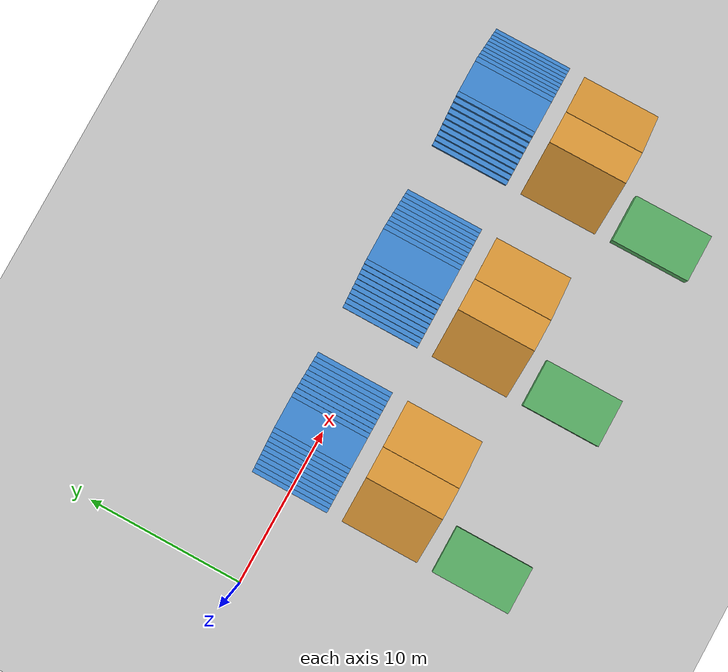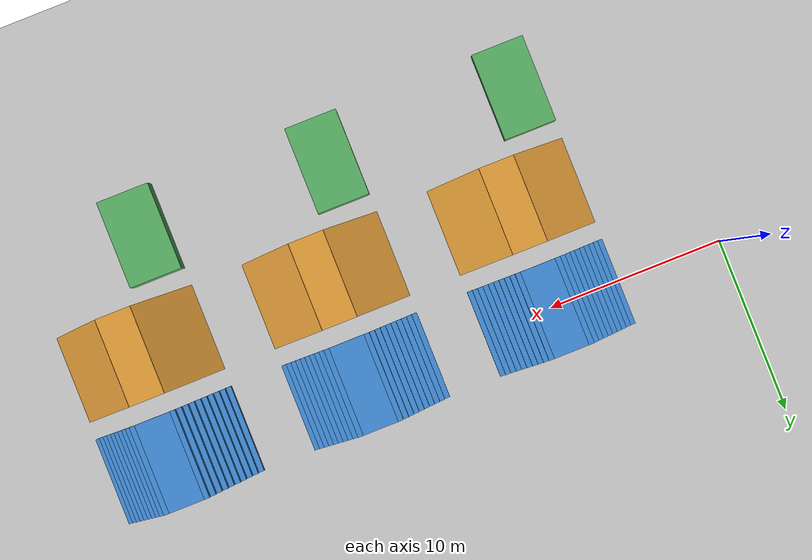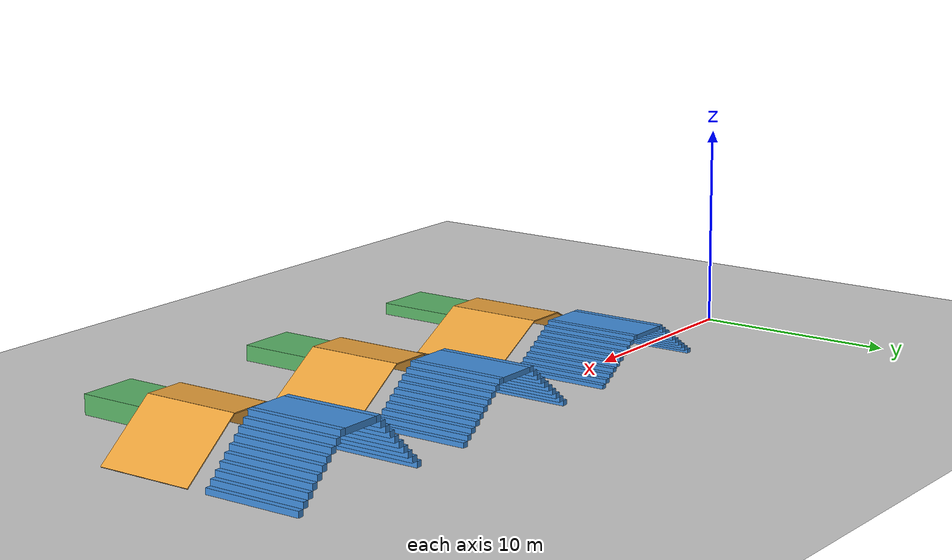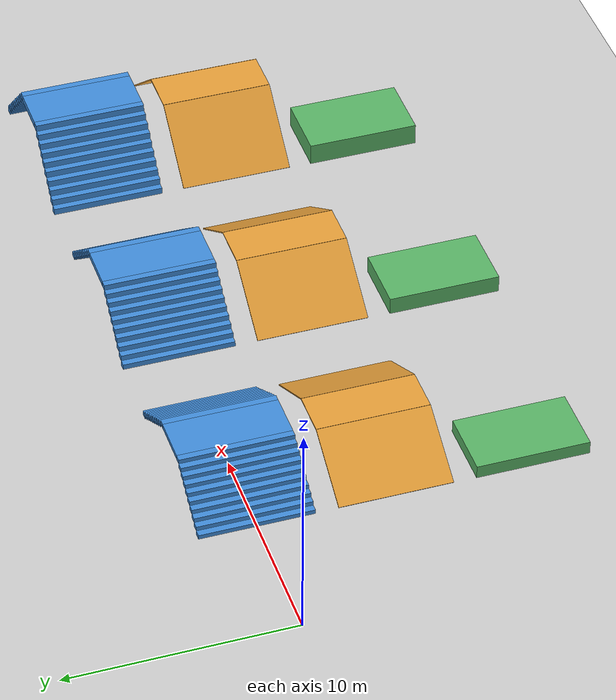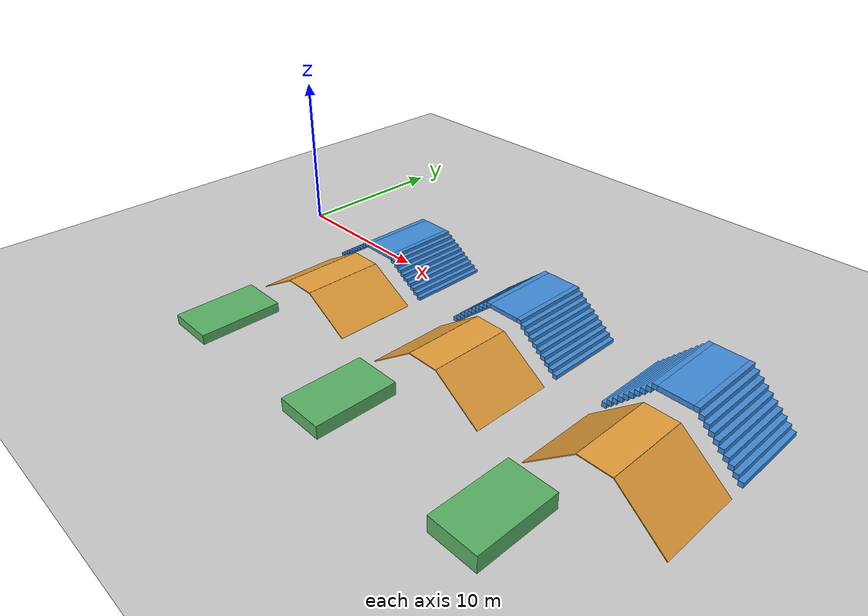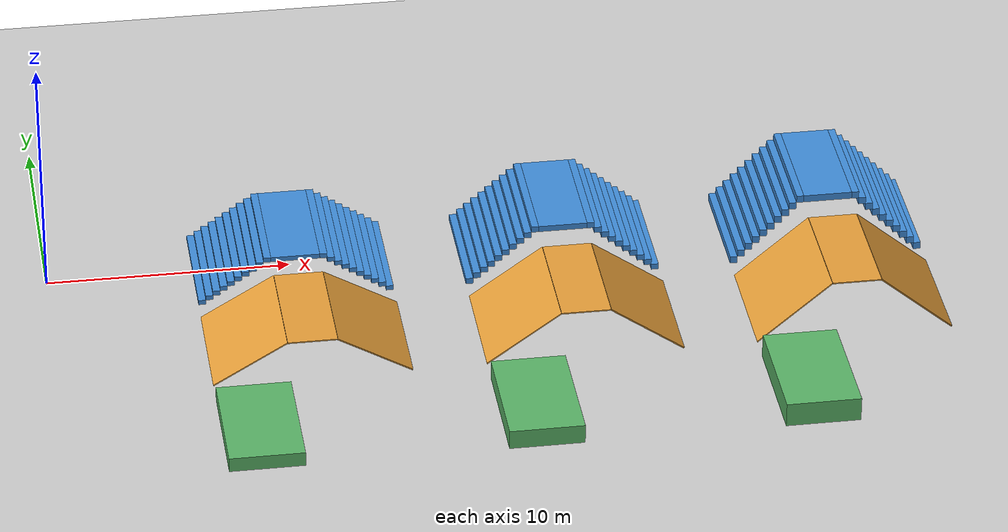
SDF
<?xml version='1.0' encoding='utf-8'?>
<sdf version="1.7">
  <world name="demo">
    <gui fullscreen="0">
      <camera name="user_camera">
        <pose>-20 -8 10 0 0.35 0.0</pose>
        <view_controller>orbit</view_controller>
        <projection_type>perspective</projection_type>
      </camera>
    </gui>
    <physics type="ode">
      <max_step_size>0.001</max_step_size>
      <real_time_factor>1.0</real_time_factor>
      <real_time_update_rate>1000</real_time_update_rate>
      <gravity>0 0 -9.81</gravity>
      <ode>
        <solver>
          <type>quick</type>
          <iters>50</iters>
          <sor>1.3</sor>
        </solver>
        <constraints>
          <cfm>0.0</cfm>
          <erp>0.2</erp>
          <contact_max_correcting_vel>10.0</contact_max_correcting_vel>
          <contact_surface_layer>0.001</contact_surface_layer>
        </constraints>
      </ode>
    </physics>
    <scene>
      <sky>
        <clouds>
          <speed>12</speed>
        </clouds>
      </sky>
    </scene>
    <include>
      <uri>model://sun</uri>
    </include>
    <include>
      <uri>model://ground_plane</uri>
    </include>
    <model name="all_terrains">
      <static>true</static>
      <link name="stairs_h20_d30__up_0">
        <pose>0 6.15 0.1 0 0 1.57079633</pose>
        <collision name="stairs_h20_d30__up_0_collision">
          <geometry>
            <box>
              <size>0.3 5.0 0.2</size>
            </box>
          </geometry>
          <surface>
            <friction>
              <ode>
                <mu>0.99</mu>
                <mu2>0.99</mu2>
              </ode>
            </friction>
          </surface>
        </collision>
        <visual name="stairs_h20_d30__up_0_visual">
          <geometry>
            <box>
              <size>0.3 5.0 0.2</size>
            </box>
          </geometry>
          <material>
            <ambient>0.25 0.55 0.85 1</ambient>
            <diffuse>0.25 0.55 0.85 1</diffuse>
          </material>
        </visual>
      </link>
      <link name="stairs_h20_d30__up_1">
        <pose>0 6.45 0.3 0 0 1.57079633</pose>
        <collision name="stairs_h20_d30__up_1_collision">
          <geometry>
            <box>
              <size>0.3 5.0 0.2</size>
            </box>
          </geometry>
          <surface>
            <friction>
              <ode>
                <mu>0.99</mu>
                <mu2>0.99</mu2>
              </ode>
            </friction>
          </surface>
        </collision>
        <visual name="stairs_h20_d30__up_1_visual">
          <geometry>
            <box>
              <size>0.3 5.0 0.2</size>
            </box>
          </geometry>
          <material>
            <ambient>0.25 0.55 0.85 1</ambient>
            <diffuse>0.25 0.55 0.85 1</diffuse>
          </material>
        </visual>
      </link>
      <link name="stairs_h20_d30__up_2">
        <pose>0 6.75 0.5 0 0 1.57079633</pose>
        <collision name="stairs_h20_d30__up_2_collision">
          <geometry>
            <box>
              <size>0.3 5.0 0.2</size>
            </box>
          </geometry>
          <surface>
            <friction>
              <ode>
                <mu>0.99</mu>
                <mu2>0.99</mu2>
              </ode>
            </friction>
          </surface>
        </collision>
        <visual name="stairs_h20_d30__up_2_visual">
          <geometry>
            <box>
              <size>0.3 5.0 0.2</size>
            </box>
          </geometry>
          <material>
            <ambient>0.25 0.55 0.85 1</ambient>
            <diffuse>0.25 0.55 0.85 1</diffuse>
          </material>
        </visual>
      </link>
      <link name="stairs_h20_d30__up_3">
        <pose>0 7.05 0.7 0 0 1.57079633</pose>
        <collision name="stairs_h20_d30__up_3_collision">
          <geometry>
            <box>
              <size>0.3 5.0 0.2</size>
            </box>
          </geometry>
          <surface>
            <friction>
              <ode>
                <mu>0.99</mu>
                <mu2>0.99</mu2>
              </ode>
            </friction>
          </surface>
        </collision>
        <visual name="stairs_h20_d30__up_3_visual">
          <geometry>
            <box>
              <size>0.3 5.0 0.2</size>
            </box>
          </geometry>
          <material>
            <ambient>0.25 0.55 0.85 1</ambient>
            <diffuse>0.25 0.55 0.85 1</diffuse>
          </material>
        </visual>
      </link>
      <link name="stairs_h20_d30__up_4">
        <pose>0 7.35 0.9 0 0 1.57079633</pose>
        <collision name="stairs_h20_d30__up_4_collision">
          <geometry>
            <box>
              <size>0.3 5.0 0.2</size>
            </box>
          </geometry>
          <surface>
            <friction>
              <ode>
                <mu>0.99</mu>
                <mu2>0.99</mu2>
              </ode>
            </friction>
          </surface>
        </collision>
        <visual name="stairs_h20_d30__up_4_visual">
          <geometry>
            <box>
              <size>0.3 5.0 0.2</size>
            </box>
          </geometry>
          <material>
            <ambient>0.25 0.55 0.85 1</ambient>
            <diffuse>0.25 0.55 0.85 1</diffuse>
          </material>
        </visual>
      </link>
      <link name="stairs_h20_d30__up_5">
        <pose>0 7.65 1.1 0 0 1.57079633</pose>
        <collision name="stairs_h20_d30__up_5_collision">
          <geometry>
            <box>
              <size>0.3 5.0 0.2</size>
            </box>
          </geometry>
          <surface>
            <friction>
              <ode>
                <mu>0.99</mu>
                <mu2>0.99</mu2>
              </ode>
            </friction>
          </surface>
        </collision>
        <visual name="stairs_h20_d30__up_5_visual">
          <geometry>
            <box>
              <size>0.3 5.0 0.2</size>
            </box>
          </geometry>
          <material>
            <ambient>0.25 0.55 0.85 1</ambient>
            <diffuse>0.25 0.55 0.85 1</diffuse>
          </material>
        </visual>
      </link>
      <link name="stairs_h20_d30__up_6">
        <pose>0 7.95 1.3 0 0 1.57079633</pose>
        <collision name="stairs_h20_d30__up_6_collision">
          <geometry>
            <box>
              <size>0.3 5.0 0.2</size>
            </box>
          </geometry>
          <surface>
            <friction>
              <ode>
                <mu>0.99</mu>
                <mu2>0.99</mu2>
              </ode>
            </friction>
          </surface>
        </collision>
        <visual name="stairs_h20_d30__up_6_visual">
          <geometry>
            <box>
              <size>0.3 5.0 0.2</size>
            </box>
          </geometry>
          <material>
            <ambient>0.25 0.55 0.85 1</ambient>
            <diffuse>0.25 0.55 0.85 1</diffuse>
          </material>
        </visual>
      </link>
      <link name="stairs_h20_d30__up_7">
        <pose>0 8.25 1.5 0 0 1.57079633</pose>
        <collision name="stairs_h20_d30__up_7_collision">
          <geometry>
            <box>
              <size>0.3 5.0 0.2</size>
            </box>
          </geometry>
          <surface>
            <friction>
              <ode>
                <mu>0.99</mu>
                <mu2>0.99</mu2>
              </ode>
            </friction>
          </surface>
        </collision>
        <visual name="stairs_h20_d30__up_7_visual">
          <geometry>
            <box>
              <size>0.3 5.0 0.2</size>
            </box>
          </geometry>
          <material>
            <ambient>0.25 0.55 0.85 1</ambient>
            <diffuse>0.25 0.55 0.85 1</diffuse>
          </material>
        </visual>
      </link>
      <link name="stairs_h20_d30__up_8">
        <pose>0 8.55 1.7 0 0 1.57079633</pose>
        <collision name="stairs_h20_d30__up_8_collision">
          <geometry>
            <box>
              <size>0.3 5.0 0.2</size>
            </box>
          </geometry>
          <surface>
            <friction>
              <ode>
                <mu>0.99</mu>
                <mu2>0.99</mu2>
              </ode>
            </friction>
          </surface>
        </collision>
        <visual name="stairs_h20_d30__up_8_visual">
          <geometry>
            <box>
              <size>0.3 5.0 0.2</size>
            </box>
          </geometry>
          <material>
            <ambient>0.25 0.55 0.85 1</ambient>
            <diffuse>0.25 0.55 0.85 1</diffuse>
          </material>
        </visual>
      </link>
      <link name="stairs_h20_d30__up_9">
        <pose>0 8.85 1.9 0 0 1.57079633</pose>
        <collision name="stairs_h20_d30__up_9_collision">
          <geometry>
            <box>
              <size>0.3 5.0 0.2</size>
            </box>
          </geometry>
          <surface>
            <friction>
              <ode>
                <mu>0.99</mu>
                <mu2>0.99</mu2>
              </ode>
            </friction>
          </surface>
        </collision>
        <visual name="stairs_h20_d30__up_9_visual">
          <geometry>
            <box>
              <size>0.3 5.0 0.2</size>
            </box>
          </geometry>
          <material>
            <ambient>0.25 0.55 0.85 1</ambient>
            <diffuse>0.25 0.55 0.85 1</diffuse>
          </material>
        </visual>
      </link>
      <link name="stairs_h20_d30__plat">
        <pose>0 10 1.9 0 0 1.57079633</pose>
        <collision name="stairs_h20_d30__plat_collision">
          <geometry>
            <box>
              <size>2.0 5.0 0.2</size>
            </box>
          </geometry>
          <surface>
            <friction>
              <ode>
                <mu>0.99</mu>
                <mu2>0.99</mu2>
              </ode>
            </friction>
          </surface>
        </collision>
        <visual name="stairs_h20_d30__plat_visual">
          <geometry>
            <box>
              <size>2.0 5.0 0.2</size>
            </box>
          </geometry>
          <material>
            <ambient>0.25 0.55 0.85 1</ambient>
            <diffuse>0.25 0.55 0.85 1</diffuse>
          </material>
        </visual>
      </link>
      <link name="stairs_h20_d30__down_0">
        <pose>0 11.15 1.9 0 0 1.57079633</pose>
        <collision name="stairs_h20_d30__down_0_collision">
          <geometry>
            <box>
              <size>0.3 5.0 0.2</size>
            </box>
          </geometry>
          <surface>
            <friction>
              <ode>
                <mu>0.99</mu>
                <mu2>0.99</mu2>
              </ode>
            </friction>
          </surface>
        </collision>
        <visual name="stairs_h20_d30__down_0_visual">
          <geometry>
            <box>
              <size>0.3 5.0 0.2</size>
            </box>
          </geometry>
          <material>
            <ambient>0.25 0.55 0.85 1</ambient>
            <diffuse>0.25 0.55 0.85 1</diffuse>
          </material>
        </visual>
      </link>
      <link name="stairs_h20_d30__down_1">
        <pose>0 11.45 1.7 0 0 1.57079633</pose>
        <collision name="stairs_h20_d30__down_1_collision">
          <geometry>
            <box>
              <size>0.3 5.0 0.2</size>
            </box>
          </geometry>
          <surface>
            <friction>
              <ode>
                <mu>0.99</mu>
                <mu2>0.99</mu2>
              </ode>
            </friction>
          </surface>
        </collision>
        <visual name="stairs_h20_d30__down_1_visual">
          <geometry>
            <box>
              <size>0.3 5.0 0.2</size>
            </box>
          </geometry>
          <material>
            <ambient>0.25 0.55 0.85 1</ambient>
            <diffuse>0.25 0.55 0.85 1</diffuse>
          </material>
        </visual>
      </link>
      <link name="stairs_h20_d30__down_2">
        <pose>0 11.75 1.5 0 0 1.57079633</pose>
        <collision name="stairs_h20_d30__down_2_collision">
          <geometry>
            <box>
              <size>0.3 5.0 0.2</size>
            </box>
          </geometry>
          <surface>
            <friction>
              <ode>
                <mu>0.99</mu>
                <mu2>0.99</mu2>
              </ode>
            </friction>
          </surface>
        </collision>
        <visual name="stairs_h20_d30__down_2_visual">
          <geometry>
            <box>
              <size>0.3 5.0 0.2</size>
            </box>
          </geometry>
          <material>
            <ambient>0.25 0.55 0.85 1</ambient>
            <diffuse>0.25 0.55 0.85 1</diffuse>
          </material>
        </visual>
      </link>
      <link name="stairs_h20_d30__down_3">
        <pose>0 12.05 1.3 0 0 1.57079633</pose>
        <collision name="stairs_h20_d30__down_3_collision">
          <geometry>
            <box>
              <size>0.3 5.0 0.2</size>
            </box>
          </geometry>
          <surface>
            <friction>
              <ode>
                <mu>0.99</mu>
                <mu2>0.99</mu2>
              </ode>
            </friction>
          </surface>
        </collision>
        <visual name="stairs_h20_d30__down_3_visual">
          <geometry>
            <box>
              <size>0.3 5.0 0.2</size>
            </box>
          </geometry>
          <material>
            <ambient>0.25 0.55 0.85 1</ambient>
            <diffuse>0.25 0.55 0.85 1</diffuse>
          </material>
        </visual>
      </link>
      <link name="stairs_h20_d30__down_4">
        <pose>0 12.35 1.1 0 0 1.57079633</pose>
        <collision name="stairs_h20_d30__down_4_collision">
          <geometry>
            <box>
              <size>0.3 5.0 0.2</size>
            </box>
          </geometry>
          <surface>
            <friction>
              <ode>
                <mu>0.99</mu>
                <mu2>0.99</mu2>
              </ode>
            </friction>
          </surface>
        </collision>
        <visual name="stairs_h20_d30__down_4_visual">
          <geometry>
            <box>
              <size>0.3 5.0 0.2</size>
            </box>
          </geometry>
          <material>
            <ambient>0.25 0.55 0.85 1</ambient>
            <diffuse>0.25 0.55 0.85 1</diffuse>
          </material>
        </visual>
      </link>
      <link name="stairs_h20_d30__down_5">
        <pose>0 12.65 0.9 0 0 1.57079633</pose>
        <collision name="stairs_h20_d30__down_5_collision">
          <geometry>
            <box>
              <size>0.3 5.0 0.2</size>
            </box>
          </geometry>
          <surface>
            <friction>
              <ode>
                <mu>0.99</mu>
                <mu2>0.99</mu2>
              </ode>
            </friction>
          </surface>
        </collision>
        <visual name="stairs_h20_d30__down_5_visual">
          <geometry>
            <box>
              <size>0.3 5.0 0.2</size>
            </box>
          </geometry>
          <material>
            <ambient>0.25 0.55 0.85 1</ambient>
            <diffuse>0.25 0.55 0.85 1</diffuse>
          </material>
        </visual>
      </link>
      <link name="stairs_h20_d30__down_6">
        <pose>0 12.95 0.7 0 0 1.57079633</pose>
        <collision name="stairs_h20_d30__down_6_collision">
          <geometry>
            <box>
              <size>0.3 5.0 0.2</size>
            </box>
          </geometry>
          <surface>
            <friction>
              <ode>
                <mu>0.99</mu>
                <mu2>0.99</mu2>
              </ode>
            </friction>
          </surface>
        </collision>
        <visual name="stairs_h20_d30__down_6_visual">
          <geometry>
            <box>
              <size>0.3 5.0 0.2</size>
            </box>
          </geometry>
          <material>
            <ambient>0.25 0.55 0.85 1</ambient>
            <diffuse>0.25 0.55 0.85 1</diffuse>
          </material>
        </visual>
      </link>
      <link name="stairs_h20_d30__down_7">
        <pose>0 13.25 0.5 0 0 1.57079633</pose>
        <collision name="stairs_h20_d30__down_7_collision">
          <geometry>
            <box>
              <size>0.3 5.0 0.2</size>
            </box>
          </geometry>
          <surface>
            <friction>
              <ode>
                <mu>0.99</mu>
                <mu2>0.99</mu2>
              </ode>
            </friction>
          </surface>
        </collision>
        <visual name="stairs_h20_d30__down_7_visual">
          <geometry>
            <box>
              <size>0.3 5.0 0.2</size>
            </box>
          </geometry>
          <material>
            <ambient>0.25 0.55 0.85 1</ambient>
            <diffuse>0.25 0.55 0.85 1</diffuse>
          </material>
        </visual>
      </link>
      <link name="stairs_h20_d30__down_8">
        <pose>0 13.55 0.3 0 0 1.57079633</pose>
        <collision name="stairs_h20_d30__down_8_collision">
          <geometry>
            <box>
              <size>0.3 5.0 0.2</size>
            </box>
          </geometry>
          <surface>
            <friction>
              <ode>
                <mu>0.99</mu>
                <mu2>0.99</mu2>
              </ode>
            </friction>
          </surface>
        </collision>
        <visual name="stairs_h20_d30__down_8_visual">
          <geometry>
            <box>
              <size>0.3 5.0 0.2</size>
            </box>
          </geometry>
          <material>
            <ambient>0.25 0.55 0.85 1</ambient>
            <diffuse>0.25 0.55 0.85 1</diffuse>
          </material>
        </visual>
      </link>
      <link name="stairs_h20_d30__down_9">
        <pose>0 13.85 0.1 0 0 1.57079633</pose>
        <collision name="stairs_h20_d30__down_9_collision">
          <geometry>
            <box>
              <size>0.3 5.0 0.2</size>
            </box>
          </geometry>
          <surface>
            <friction>
              <ode>
                <mu>0.99</mu>
                <mu2>0.99</mu2>
              </ode>
            </friction>
          </surface>
        </collision>
        <visual name="stairs_h20_d30__down_9_visual">
          <geometry>
            <box>
              <size>0.3 5.0 0.2</size>
            </box>
          </geometry>
          <material>
            <ambient>0.25 0.55 0.85 1</ambient>
            <diffuse>0.25 0.55 0.85 1</diffuse>
          </material>
        </visual>
      </link>
      <link name="stairs_h25_d30__up_0">
        <pose>0 17.15 0.125 0 0 1.57079633</pose>
        <collision name="stairs_h25_d30__up_0_collision">
          <geometry>
            <box>
              <size>0.3 5.0 0.25</size>
            </box>
          </geometry>
          <surface>
            <friction>
              <ode>
                <mu>0.99</mu>
                <mu2>0.99</mu2>
              </ode>
            </friction>
          </surface>
        </collision>
        <visual name="stairs_h25_d30__up_0_visual">
          <geometry>
            <box>
              <size>0.3 5.0 0.25</size>
            </box>
          </geometry>
          <material>
            <ambient>0.25 0.55 0.85 1</ambient>
            <diffuse>0.25 0.55 0.85 1</diffuse>
          </material>
        </visual>
      </link>
      <link name="stairs_h25_d30__up_1">
        <pose>0 17.45 0.375 0 0 1.57079633</pose>
        <collision name="stairs_h25_d30__up_1_collision">
          <geometry>
            <box>
              <size>0.3 5.0 0.25</size>
            </box>
          </geometry>
          <surface>
            <friction>
              <ode>
                <mu>0.99</mu>
                <mu2>0.99</mu2>
              </ode>
            </friction>
          </surface>
        </collision>
        <visual name="stairs_h25_d30__up_1_visual">
          <geometry>
            <box>
              <size>0.3 5.0 0.25</size>
            </box>
          </geometry>
          <material>
            <ambient>0.25 0.55 0.85 1</ambient>
            <diffuse>0.25 0.55 0.85 1</diffuse>
          </material>
        </visual>
      </link>
      <link name="stairs_h25_d30__up_2">
        <pose>0 17.75 0.625 0 0 1.57079633</pose>
        <collision name="stairs_h25_d30__up_2_collision">
          <geometry>
            <box>
              <size>0.3 5.0 0.25</size>
            </box>
          </geometry>
          <surface>
            <friction>
              <ode>
                <mu>0.99</mu>
                <mu2>0.99</mu2>
              </ode>
            </friction>
          </surface>
        </collision>
        <visual name="stairs_h25_d30__up_2_visual">
          <geometry>
            <box>
              <size>0.3 5.0 0.25</size>
            </box>
          </geometry>
          <material>
            <ambient>0.25 0.55 0.85 1</ambient>
            <diffuse>0.25 0.55 0.85 1</diffuse>
          </material>
        </visual>
      </link>
      <link name="stairs_h25_d30__up_3">
        <pose>0 18.05 0.875 0 0 1.57079633</pose>
        <collision name="stairs_h25_d30__up_3_collision">
          <geometry>
            <box>
              <size>0.3 5.0 0.25</size>
            </box>
          </geometry>
          <surface>
            <friction>
              <ode>
                <mu>0.99</mu>
                <mu2>0.99</mu2>
              </ode>
            </friction>
          </surface>
        </collision>
        <visual name="stairs_h25_d30__up_3_visual">
          <geometry>
            <box>
              <size>0.3 5.0 0.25</size>
            </box>
          </geometry>
          <material>
            <ambient>0.25 0.55 0.85 1</ambient>
            <diffuse>0.25 0.55 0.85 1</diffuse>
          </material>
        </visual>
      </link>
      <link name="stairs_h25_d30__up_4">
        <pose>0 18.35 1.125 0 0 1.57079633</pose>
        <collision name="stairs_h25_d30__up_4_collision">
          <geometry>
            <box>
              <size>0.3 5.0 0.25</size>
            </box>
          </geometry>
          <surface>
            <friction>
              <ode>
                <mu>0.99</mu>
                <mu2>0.99</mu2>
              </ode>
            </friction>
          </surface>
        </collision>
        <visual name="stairs_h25_d30__up_4_visual">
          <geometry>
            <box>
              <size>0.3 5.0 0.25</size>
            </box>
          </geometry>
          <material>
            <ambient>0.25 0.55 0.85 1</ambient>
            <diffuse>0.25 0.55 0.85 1</diffuse>
          </material>
        </visual>
      </link>
      <link name="stairs_h25_d30__up_5">
        <pose>0 18.65 1.375 0 0 1.57079633</pose>
        <collision name="stairs_h25_d30__up_5_collision">
          <geometry>
            <box>
              <size>0.3 5.0 0.25</size>
            </box>
          </geometry>
          <surface>
            <friction>
              <ode>
                <mu>0.99</mu>
                <mu2>0.99</mu2>
              </ode>
            </friction>
          </surface>
        </collision>
        <visual name="stairs_h25_d30__up_5_visual">
          <geometry>
            <box>
              <size>0.3 5.0 0.25</size>
            </box>
          </geometry>
          <material>
            <ambient>0.25 0.55 0.85 1</ambient>
            <diffuse>0.25 0.55 0.85 1</diffuse>
          </material>
        </visual>
      </link>
      <link name="stairs_h25_d30__up_6">
        <pose>0 18.95 1.625 0 0 1.57079633</pose>
        <collision name="stairs_h25_d30__up_6_collision">
          <geometry>
            <box>
              <size>0.3 5.0 0.25</size>
            </box>
          </geometry>
          <surface>
            <friction>
              <ode>
                <mu>0.99</mu>
                <mu2>0.99</mu2>
              </ode>
            </friction>
          </surface>
        </collision>
        <visual name="stairs_h25_d30__up_6_visual">
          <geometry>
            <box>
              <size>0.3 5.0 0.25</size>
            </box>
          </geometry>
          <material>
            <ambient>0.25 0.55 0.85 1</ambient>
            <diffuse>0.25 0.55 0.85 1</diffuse>
          </material>
        </visual>
      </link>
      <link name="stairs_h25_d30__up_7">
        <pose>0 19.25 1.875 0 0 1.57079633</pose>
        <collision name="stairs_h25_d30__up_7_collision">
          <geometry>
            <box>
              <size>0.3 5.0 0.25</size>
            </box>
          </geometry>
          <surface>
            <friction>
              <ode>
                <mu>0.99</mu>
                <mu2>0.99</mu2>
              </ode>
            </friction>
          </surface>
        </collision>
        <visual name="stairs_h25_d30__up_7_visual">
          <geometry>
            <box>
              <size>0.3 5.0 0.25</size>
            </box>
          </geometry>
          <material>
            <ambient>0.25 0.55 0.85 1</ambient>
            <diffuse>0.25 0.55 0.85 1</diffuse>
          </material>
        </visual>
      </link>
      <link name="stairs_h25_d30__up_8">
        <pose>0 19.55 2.125 0 0 1.57079633</pose>
        <collision name="stairs_h25_d30__up_8_collision">
          <geometry>
            <box>
              <size>0.3 5.0 0.25</size>
            </box>
          </geometry>
          <surface>
            <friction>
              <ode>
                <mu>0.99</mu>
                <mu2>0.99</mu2>
              </ode>
            </friction>
          </surface>
        </collision>
        <visual name="stairs_h25_d30__up_8_visual">
          <geometry>
            <box>
              <size>0.3 5.0 0.25</size>
            </box>
          </geometry>
          <material>
            <ambient>0.25 0.55 0.85 1</ambient>
            <diffuse>0.25 0.55 0.85 1</diffuse>
          </material>
        </visual>
      </link>
      <link name="stairs_h25_d30__up_9">
        <pose>0 19.85 2.375 0 0 1.57079633</pose>
        <collision name="stairs_h25_d30__up_9_collision">
          <geometry>
            <box>
              <size>0.3 5.0 0.25</size>
            </box>
          </geometry>
          <surface>
            <friction>
              <ode>
                <mu>0.99</mu>
                <mu2>0.99</mu2>
              </ode>
            </friction>
          </surface>
        </collision>
        <visual name="stairs_h25_d30__up_9_visual">
          <geometry>
            <box>
              <size>0.3 5.0 0.25</size>
            </box>
          </geometry>
          <material>
            <ambient>0.25 0.55 0.85 1</ambient>
            <diffuse>0.25 0.55 0.85 1</diffuse>
          </material>
        </visual>
      </link>
      <link name="stairs_h25_d30__plat">
        <pose>0 21 2.375 0 0 1.57079633</pose>
        <collision name="stairs_h25_d30__plat_collision">
          <geometry>
            <box>
              <size>2.0 5.0 0.25</size>
            </box>
          </geometry>
          <surface>
            <friction>
              <ode>
                <mu>0.99</mu>
                <mu2>0.99</mu2>
              </ode>
            </friction>
          </surface>
        </collision>
        <visual name="stairs_h25_d30__plat_visual">
          <geometry>
            <box>
              <size>2.0 5.0 0.25</size>
            </box>
          </geometry>
          <material>
            <ambient>0.25 0.55 0.85 1</ambient>
            <diffuse>0.25 0.55 0.85 1</diffuse>
          </material>
        </visual>
      </link>
      <link name="stairs_h25_d30__down_0">
        <pose>0 22.15 2.375 0 0 1.57079633</pose>
        <collision name="stairs_h25_d30__down_0_collision">
          <geometry>
            <box>
              <size>0.3 5.0 0.25</size>
            </box>
          </geometry>
          <surface>
            <friction>
              <ode>
                <mu>0.99</mu>
                <mu2>0.99</mu2>
              </ode>
            </friction>
          </surface>
        </collision>
        <visual name="stairs_h25_d30__down_0_visual">
          <geometry>
            <box>
              <size>0.3 5.0 0.25</size>
            </box>
          </geometry>
          <material>
            <ambient>0.25 0.55 0.85 1</ambient>
            <diffuse>0.25 0.55 0.85 1</diffuse>
          </material>
        </visual>
      </link>
      <link name="stairs_h25_d30__down_1">
        <pose>0 22.45 2.125 0 0 1.57079633</pose>
        <collision name="stairs_h25_d30__down_1_collision">
          <geometry>
            <box>
              <size>0.3 5.0 0.25</size>
            </box>
          </geometry>
          <surface>
            <friction>
              <ode>
                <mu>0.99</mu>
                <mu2>0.99</mu2>
              </ode>
            </friction>
          </surface>
        </collision>
        <visual name="stairs_h25_d30__down_1_visual">
          <geometry>
            <box>
              <size>0.3 5.0 0.25</size>
            </box>
          </geometry>
          <material>
            <ambient>0.25 0.55 0.85 1</ambient>
            <diffuse>0.25 0.55 0.85 1</diffuse>
          </material>
        </visual>
      </link>
      <link name="stairs_h25_d30__down_2">
        <pose>0 22.75 1.875 0 0 1.57079633</pose>
        <collision name="stairs_h25_d30__down_2_collision">
          <geometry>
            <box>
              <size>0.3 5.0 0.25</size>
            </box>
          </geometry>
          <surface>
            <friction>
              <ode>
                <mu>0.99</mu>
                <mu2>0.99</mu2>
              </ode>
            </friction>
          </surface>
        </collision>
        <visual name="stairs_h25_d30__down_2_visual">
          <geometry>
            <box>
              <size>0.3 5.0 0.25</size>
            </box>
          </geometry>
          <material>
            <ambient>0.25 0.55 0.85 1</ambient>
            <diffuse>0.25 0.55 0.85 1</diffuse>
          </material>
        </visual>
      </link>
      <link name="stairs_h25_d30__down_3">
        <pose>0 23.05 1.625 0 0 1.57079633</pose>
        <collision name="stairs_h25_d30__down_3_collision">
          <geometry>
            <box>
              <size>0.3 5.0 0.25</size>
            </box>
          </geometry>
          <surface>
            <friction>
              <ode>
                <mu>0.99</mu>
                <mu2>0.99</mu2>
              </ode>
            </friction>
          </surface>
        </collision>
        <visual name="stairs_h25_d30__down_3_visual">
          <geometry>
            <box>
              <size>0.3 5.0 0.25</size>
            </box>
          </geometry>
          <material>
            <ambient>0.25 0.55 0.85 1</ambient>
            <diffuse>0.25 0.55 0.85 1</diffuse>
          </material>
        </visual>
      </link>
      <link name="stairs_h25_d30__down_4">
        <pose>0 23.35 1.375 0 0 1.57079633</pose>
        <collision name="stairs_h25_d30__down_4_collision">
          <geometry>
            <box>
              <size>0.3 5.0 0.25</size>
            </box>
          </geometry>
          <surface>
            <friction>
              <ode>
                <mu>0.99</mu>
                <mu2>0.99</mu2>
              </ode>
            </friction>
          </surface>
        </collision>
        <visual name="stairs_h25_d30__down_4_visual">
          <geometry>
            <box>
              <size>0.3 5.0 0.25</size>
            </box>
          </geometry>
          <material>
            <ambient>0.25 0.55 0.85 1</ambient>
            <diffuse>0.25 0.55 0.85 1</diffuse>
          </material>
        </visual>
      </link>
      <link name="stairs_h25_d30__down_5">
        <pose>0 23.65 1.125 0 0 1.57079633</pose>
        <collision name="stairs_h25_d30__down_5_collision">
          <geometry>
            <box>
              <size>0.3 5.0 0.25</size>
            </box>
          </geometry>
          <surface>
            <friction>
              <ode>
                <mu>0.99</mu>
                <mu2>0.99</mu2>
              </ode>
            </friction>
          </surface>
        </collision>
        <visual name="stairs_h25_d30__down_5_visual">
          <geometry>
            <box>
              <size>0.3 5.0 0.25</size>
            </box>
          </geometry>
          <material>
            <ambient>0.25 0.55 0.85 1</ambient>
            <diffuse>0.25 0.55 0.85 1</diffuse>
          </material>
        </visual>
      </link>
      <link name="stairs_h25_d30__down_6">
        <pose>0 23.95 0.875 0 0 1.57079633</pose>
        <collision name="stairs_h25_d30__down_6_collision">
          <geometry>
            <box>
              <size>0.3 5.0 0.25</size>
            </box>
          </geometry>
          <surface>
            <friction>
              <ode>
                <mu>0.99</mu>
                <mu2>0.99</mu2>
              </ode>
            </friction>
          </surface>
        </collision>
        <visual name="stairs_h25_d30__down_6_visual">
          <geometry>
            <box>
              <size>0.3 5.0 0.25</size>
            </box>
          </geometry>
          <material>
            <ambient>0.25 0.55 0.85 1</ambient>
            <diffuse>0.25 0.55 0.85 1</diffuse>
          </material>
        </visual>
      </link>
      <link name="stairs_h25_d30__down_7">
        <pose>0 24.25 0.625 0 0 1.57079633</pose>
        <collision name="stairs_h25_d30__down_7_collision">
          <geometry>
            <box>
              <size>0.3 5.0 0.25</size>
            </box>
          </geometry>
          <surface>
            <friction>
              <ode>
                <mu>0.99</mu>
                <mu2>0.99</mu2>
              </ode>
            </friction>
          </surface>
        </collision>
        <visual name="stairs_h25_d30__down_7_visual">
          <geometry>
            <box>
              <size>0.3 5.0 0.25</size>
            </box>
          </geometry>
          <material>
            <ambient>0.25 0.55 0.85 1</ambient>
            <diffuse>0.25 0.55 0.85 1</diffuse>
          </material>
        </visual>
      </link>
      <link name="stairs_h25_d30__down_8">
        <pose>0 24.55 0.375 0 0 1.57079633</pose>
        <collision name="stairs_h25_d30__down_8_collision">
          <geometry>
            <box>
              <size>0.3 5.0 0.25</size>
            </box>
          </geometry>
          <surface>
            <friction>
              <ode>
                <mu>0.99</mu>
                <mu2>0.99</mu2>
              </ode>
            </friction>
          </surface>
        </collision>
        <visual name="stairs_h25_d30__down_8_visual">
          <geometry>
            <box>
              <size>0.3 5.0 0.25</size>
            </box>
          </geometry>
          <material>
            <ambient>0.25 0.55 0.85 1</ambient>
            <diffuse>0.25 0.55 0.85 1</diffuse>
          </material>
        </visual>
      </link>
      <link name="stairs_h25_d30__down_9">
        <pose>0 24.85 0.125 0 0 1.57079633</pose>
        <collision name="stairs_h25_d30__down_9_collision">
          <geometry>
            <box>
              <size>0.3 5.0 0.25</size>
            </box>
          </geometry>
          <surface>
            <friction>
              <ode>
                <mu>0.99</mu>
                <mu2>0.99</mu2>
              </ode>
            </friction>
          </surface>
        </collision>
        <visual name="stairs_h25_d30__down_9_visual">
          <geometry>
            <box>
              <size>0.3 5.0 0.25</size>
            </box>
          </geometry>
          <material>
            <ambient>0.25 0.55 0.85 1</ambient>
            <diffuse>0.25 0.55 0.85 1</diffuse>
          </material>
        </visual>
      </link>
      <link name="stairs_h30_d30__up_0">
        <pose>0 28.15 0.15 0 0 1.57079633</pose>
        <collision name="stairs_h30_d30__up_0_collision">
          <geometry>
            <box>
              <size>0.3 5.0 0.3</size>
            </box>
          </geometry>
          <surface>
            <friction>
              <ode>
                <mu>0.99</mu>
                <mu2>0.99</mu2>
              </ode>
            </friction>
          </surface>
        </collision>
        <visual name="stairs_h30_d30__up_0_visual">
          <geometry>
            <box>
              <size>0.3 5.0 0.3</size>
            </box>
          </geometry>
          <material>
            <ambient>0.25 0.55 0.85 1</ambient>
            <diffuse>0.25 0.55 0.85 1</diffuse>
          </material>
        </visual>
      </link>
      <link name="stairs_h30_d30__up_1">
        <pose>0 28.45 0.45 0 0 1.57079633</pose>
        <collision name="stairs_h30_d30__up_1_collision">
          <geometry>
            <box>
              <size>0.3 5.0 0.3</size>
            </box>
          </geometry>
          <surface>
            <friction>
              <ode>
                <mu>0.99</mu>
                <mu2>0.99</mu2>
              </ode>
            </friction>
          </surface>
        </collision>
        <visual name="stairs_h30_d30__up_1_visual">
          <geometry>
            <box>
              <size>0.3 5.0 0.3</size>
            </box>
          </geometry>
          <material>
            <ambient>0.25 0.55 0.85 1</ambient>
            <diffuse>0.25 0.55 0.85 1</diffuse>
          </material>
        </visual>
      </link>
      <link name="stairs_h30_d30__up_2">
        <pose>0 28.75 0.75 0 0 1.57079633</pose>
        <collision name="stairs_h30_d30__up_2_collision">
          <geometry>
            <box>
              <size>0.3 5.0 0.3</size>
            </box>
          </geometry>
          <surface>
            <friction>
              <ode>
                <mu>0.99</mu>
                <mu2>0.99</mu2>
              </ode>
            </friction>
          </surface>
        </collision>
        <visual name="stairs_h30_d30__up_2_visual">
          <geometry>
            <box>
              <size>0.3 5.0 0.3</size>
            </box>
          </geometry>
          <material>
            <ambient>0.25 0.55 0.85 1</ambient>
            <diffuse>0.25 0.55 0.85 1</diffuse>
          </material>
        </visual>
      </link>
      <link name="stairs_h30_d30__up_3">
        <pose>0 29.05 1.05 0 0 1.57079633</pose>
        <collision name="stairs_h30_d30__up_3_collision">
          <geometry>
            <box>
              <size>0.3 5.0 0.3</size>
            </box>
          </geometry>
          <surface>
            <friction>
              <ode>
                <mu>0.99</mu>
                <mu2>0.99</mu2>
              </ode>
            </friction>
          </surface>
        </collision>
        <visual name="stairs_h30_d30__up_3_visual">
          <geometry>
            <box>
              <size>0.3 5.0 0.3</size>
            </box>
          </geometry>
          <material>
            <ambient>0.25 0.55 0.85 1</ambient>
            <diffuse>0.25 0.55 0.85 1</diffuse>
          </material>
        </visual>
      </link>
      <link name="stairs_h30_d30__up_4">
        <pose>0 29.35 1.35 0 0 1.57079633</pose>
        <collision name="stairs_h30_d30__up_4_collision">
          <geometry>
            <box>
              <size>0.3 5.0 0.3</size>
            </box>
          </geometry>
          <surface>
            <friction>
              <ode>
                <mu>0.99</mu>
                <mu2>0.99</mu2>
              </ode>
            </friction>
          </surface>
        </collision>
        <visual name="stairs_h30_d30__up_4_visual">
          <geometry>
            <box>
              <size>0.3 5.0 0.3</size>
            </box>
          </geometry>
          <material>
            <ambient>0.25 0.55 0.85 1</ambient>
            <diffuse>0.25 0.55 0.85 1</diffuse>
          </material>
        </visual>
      </link>
      <link name="stairs_h30_d30__up_5">
        <pose>0 29.65 1.65 0 0 1.57079633</pose>
        <collision name="stairs_h30_d30__up_5_collision">
          <geometry>
            <box>
              <size>0.3 5.0 0.3</size>
            </box>
          </geometry>
          <surface>
            <friction>
              <ode>
                <mu>0.99</mu>
                <mu2>0.99</mu2>
              </ode>
            </friction>
          </surface>
        </collision>
        <visual name="stairs_h30_d30__up_5_visual">
          <geometry>
            <box>
              <size>0.3 5.0 0.3</size>
            </box>
          </geometry>
          <material>
            <ambient>0.25 0.55 0.85 1</ambient>
            <diffuse>0.25 0.55 0.85 1</diffuse>
          </material>
        </visual>
      </link>
      <link name="stairs_h30_d30__up_6">
        <pose>0 29.95 1.95 0 0 1.57079633</pose>
        <collision name="stairs_h30_d30__up_6_collision">
          <geometry>
            <box>
              <size>0.3 5.0 0.3</size>
            </box>
          </geometry>
          <surface>
            <friction>
              <ode>
                <mu>0.99</mu>
                <mu2>0.99</mu2>
              </ode>
            </friction>
          </surface>
        </collision>
        <visual name="stairs_h30_d30__up_6_visual">
          <geometry>
            <box>
              <size>0.3 5.0 0.3</size>
            </box>
          </geometry>
          <material>
            <ambient>0.25 0.55 0.85 1</ambient>
            <diffuse>0.25 0.55 0.85 1</diffuse>
          </material>
        </visual>
      </link>
      <link name="stairs_h30_d30__up_7">
        <pose>0 30.25 2.25 0 0 1.57079633</pose>
        <collision name="stairs_h30_d30__up_7_collision">
          <geometry>
            <box>
              <size>0.3 5.0 0.3</size>
            </box>
          </geometry>
          <surface>
            <friction>
              <ode>
                <mu>0.99</mu>
                <mu2>0.99</mu2>
              </ode>
            </friction>
          </surface>
        </collision>
        <visual name="stairs_h30_d30__up_7_visual">
          <geometry>
            <box>
              <size>0.3 5.0 0.3</size>
            </box>
          </geometry>
          <material>
            <ambient>0.25 0.55 0.85 1</ambient>
            <diffuse>0.25 0.55 0.85 1</diffuse>
          </material>
        </visual>
      </link>
      <link name="stairs_h30_d30__up_8">
        <pose>0 30.55 2.55 0 0 1.57079633</pose>
        <collision name="stairs_h30_d30__up_8_collision">
          <geometry>
            <box>
              <size>0.3 5.0 0.3</size>
            </box>
          </geometry>
          <surface>
            <friction>
              <ode>
                <mu>0.99</mu>
                <mu2>0.99</mu2>
              </ode>
            </friction>
          </surface>
        </collision>
        <visual name="stairs_h30_d30__up_8_visual">
          <geometry>
            <box>
              <size>0.3 5.0 0.3</size>
            </box>
          </geometry>
          <material>
            <ambient>0.25 0.55 0.85 1</ambient>
            <diffuse>0.25 0.55 0.85 1</diffuse>
          </material>
        </visual>
      </link>
      <link name="stairs_h30_d30__up_9">
        <pose>0 30.85 2.85 0 0 1.57079633</pose>
        <collision name="stairs_h30_d30__up_9_collision">
          <geometry>
            <box>
              <size>0.3 5.0 0.3</size>
            </box>
          </geometry>
          <surface>
            <friction>
              <ode>
                <mu>0.99</mu>
                <mu2>0.99</mu2>
              </ode>
            </friction>
          </surface>
        </collision>
        <visual name="stairs_h30_d30__up_9_visual">
          <geometry>
            <box>
              <size>0.3 5.0 0.3</size>
            </box>
          </geometry>
          <material>
            <ambient>0.25 0.55 0.85 1</ambient>
            <diffuse>0.25 0.55 0.85 1</diffuse>
          </material>
        </visual>
      </link>
      <link name="stairs_h30_d30__plat">
        <pose>0 32 2.85 0 0 1.57079633</pose>
        <collision name="stairs_h30_d30__plat_collision">
          <geometry>
            <box>
              <size>2.0 5.0 0.3</size>
            </box>
          </geometry>
          <surface>
            <friction>
              <ode>
                <mu>0.99</mu>
                <mu2>0.99</mu2>
              </ode>
            </friction>
          </surface>
        </collision>
        <visual name="stairs_h30_d30__plat_visual">
          <geometry>
            <box>
              <size>2.0 5.0 0.3</size>
            </box>
          </geometry>
          <material>
            <ambient>0.25 0.55 0.85 1</ambient>
            <diffuse>0.25 0.55 0.85 1</diffuse>
          </material>
        </visual>
      </link>
      <link name="stairs_h30_d30__down_0">
        <pose>0 33.15 2.85 0 0 1.57079633</pose>
        <collision name="stairs_h30_d30__down_0_collision">
          <geometry>
            <box>
              <size>0.3 5.0 0.3</size>
            </box>
          </geometry>
          <surface>
            <friction>
              <ode>
                <mu>0.99</mu>
                <mu2>0.99</mu2>
              </ode>
            </friction>
          </surface>
        </collision>
        <visual name="stairs_h30_d30__down_0_visual">
          <geometry>
            <box>
              <size>0.3 5.0 0.3</size>
            </box>
          </geometry>
          <material>
            <ambient>0.25 0.55 0.85 1</ambient>
            <diffuse>0.25 0.55 0.85 1</diffuse>
          </material>
        </visual>
      </link>
      <link name="stairs_h30_d30__down_1">
        <pose>0 33.45 2.55 0 0 1.57079633</pose>
        <collision name="stairs_h30_d30__down_1_collision">
          <geometry>
            <box>
              <size>0.3 5.0 0.3</size>
            </box>
          </geometry>
          <surface>
            <friction>
              <ode>
                <mu>0.99</mu>
                <mu2>0.99</mu2>
              </ode>
            </friction>
          </surface>
        </collision>
        <visual name="stairs_h30_d30__down_1_visual">
          <geometry>
            <box>
              <size>0.3 5.0 0.3</size>
            </box>
          </geometry>
          <material>
            <ambient>0.25 0.55 0.85 1</ambient>
            <diffuse>0.25 0.55 0.85 1</diffuse>
          </material>
        </visual>
      </link>
      <link name="stairs_h30_d30__down_2">
        <pose>0 33.75 2.25 0 0 1.57079633</pose>
        <collision name="stairs_h30_d30__down_2_collision">
          <geometry>
            <box>
              <size>0.3 5.0 0.3</size>
            </box>
          </geometry>
          <surface>
            <friction>
              <ode>
                <mu>0.99</mu>
                <mu2>0.99</mu2>
              </ode>
            </friction>
          </surface>
        </collision>
        <visual name="stairs_h30_d30__down_2_visual">
          <geometry>
            <box>
              <size>0.3 5.0 0.3</size>
            </box>
          </geometry>
          <material>
            <ambient>0.25 0.55 0.85 1</ambient>
            <diffuse>0.25 0.55 0.85 1</diffuse>
          </material>
        </visual>
      </link>
      <link name="stairs_h30_d30__down_3">
        <pose>0 34.05 1.95 0 0 1.57079633</pose>
        <collision name="stairs_h30_d30__down_3_collision">
          <geometry>
            <box>
              <size>0.3 5.0 0.3</size>
            </box>
          </geometry>
          <surface>
            <friction>
              <ode>
                <mu>0.99</mu>
                <mu2>0.99</mu2>
              </ode>
            </friction>
          </surface>
        </collision>
        <visual name="stairs_h30_d30__down_3_visual">
          <geometry>
            <box>
              <size>0.3 5.0 0.3</size>
            </box>
          </geometry>
          <material>
            <ambient>0.25 0.55 0.85 1</ambient>
            <diffuse>0.25 0.55 0.85 1</diffuse>
          </material>
        </visual>
      </link>
      <link name="stairs_h30_d30__down_4">
        <pose>0 34.35 1.65 0 0 1.57079633</pose>
        <collision name="stairs_h30_d30__down_4_collision">
          <geometry>
            <box>
              <size>0.3 5.0 0.3</size>
            </box>
          </geometry>
          <surface>
            <friction>
              <ode>
                <mu>0.99</mu>
                <mu2>0.99</mu2>
              </ode>
            </friction>
          </surface>
        </collision>
        <visual name="stairs_h30_d30__down_4_visual">
          <geometry>
            <box>
              <size>0.3 5.0 0.3</size>
            </box>
          </geometry>
          <material>
            <ambient>0.25 0.55 0.85 1</ambient>
            <diffuse>0.25 0.55 0.85 1</diffuse>
          </material>
        </visual>
      </link>
      <link name="stairs_h30_d30__down_5">
        <pose>0 34.65 1.35 0 0 1.57079633</pose>
        <collision name="stairs_h30_d30__down_5_collision">
          <geometry>
            <box>
              <size>0.3 5.0 0.3</size>
            </box>
          </geometry>
          <surface>
            <friction>
              <ode>
                <mu>0.99</mu>
                <mu2>0.99</mu2>
              </ode>
            </friction>
          </surface>
        </collision>
        <visual name="stairs_h30_d30__down_5_visual">
          <geometry>
            <box>
              <size>0.3 5.0 0.3</size>
            </box>
          </geometry>
          <material>
            <ambient>0.25 0.55 0.85 1</ambient>
            <diffuse>0.25 0.55 0.85 1</diffuse>
          </material>
        </visual>
      </link>
      <link name="stairs_h30_d30__down_6">
        <pose>0 34.95 1.05 0 0 1.57079633</pose>
        <collision name="stairs_h30_d30__down_6_collision">
          <geometry>
            <box>
              <size>0.3 5.0 0.3</size>
            </box>
          </geometry>
          <surface>
            <friction>
              <ode>
                <mu>0.99</mu>
                <mu2>0.99</mu2>
              </ode>
            </friction>
          </surface>
        </collision>
        <visual name="stairs_h30_d30__down_6_visual">
          <geometry>
            <box>
              <size>0.3 5.0 0.3</size>
            </box>
          </geometry>
          <material>
            <ambient>0.25 0.55 0.85 1</ambient>
            <diffuse>0.25 0.55 0.85 1</diffuse>
          </material>
        </visual>
      </link>
      <link name="stairs_h30_d30__down_7">
        <pose>0 35.25 0.75 0 0 1.57079633</pose>
        <collision name="stairs_h30_d30__down_7_collision">
          <geometry>
            <box>
              <size>0.3 5.0 0.3</size>
            </box>
          </geometry>
          <surface>
            <friction>
              <ode>
                <mu>0.99</mu>
                <mu2>0.99</mu2>
              </ode>
            </friction>
          </surface>
        </collision>
        <visual name="stairs_h30_d30__down_7_visual">
          <geometry>
            <box>
              <size>0.3 5.0 0.3</size>
            </box>
          </geometry>
          <material>
            <ambient>0.25 0.55 0.85 1</ambient>
            <diffuse>0.25 0.55 0.85 1</diffuse>
          </material>
        </visual>
      </link>
      <link name="stairs_h30_d30__down_8">
        <pose>0 35.55 0.45 0 0 1.57079633</pose>
        <collision name="stairs_h30_d30__down_8_collision">
          <geometry>
            <box>
              <size>0.3 5.0 0.3</size>
            </box>
          </geometry>
          <surface>
            <friction>
              <ode>
                <mu>0.99</mu>
                <mu2>0.99</mu2>
              </ode>
            </friction>
          </surface>
        </collision>
        <visual name="stairs_h30_d30__down_8_visual">
          <geometry>
            <box>
              <size>0.3 5.0 0.3</size>
            </box>
          </geometry>
          <material>
            <ambient>0.25 0.55 0.85 1</ambient>
            <diffuse>0.25 0.55 0.85 1</diffuse>
          </material>
        </visual>
      </link>
      <link name="stairs_h30_d30__down_9">
        <pose>0 35.85 0.15 0 0 1.57079633</pose>
        <collision name="stairs_h30_d30__down_9_collision">
          <geometry>
            <box>
              <size>0.3 5.0 0.3</size>
            </box>
          </geometry>
          <surface>
            <friction>
              <ode>
                <mu>0.99</mu>
                <mu2>0.99</mu2>
              </ode>
            </friction>
          </surface>
        </collision>
        <visual name="stairs_h30_d30__down_9_visual">
          <geometry>
            <box>
              <size>0.3 5.0 0.3</size>
            </box>
          </geometry>
          <material>
            <ambient>0.25 0.55 0.85 1</ambient>
            <diffuse>0.25 0.55 0.85 1</diffuse>
          </material>
        </visual>
      </link>
      <link name="ramp_30deg__ramp_up">
        <pose>6 7.5 0.894374769 0 -0.523598776 1.57079633</pose>
        <collision name="ramp_30deg__ramp_up_collision">
          <geometry>
            <box>
              <size>3.4641016151377544 5.0 0.05</size>
            </box>
          </geometry>
          <surface>
            <friction>
              <ode>
                <mu>0.99</mu>
                <mu2>0.99</mu2>
              </ode>
            </friction>
          </surface>
        </collision>
        <visual name="ramp_30deg__ramp_up_visual">
          <geometry>
            <box>
              <size>3.4641016151377544 5.0 0.05</size>
            </box>
          </geometry>
          <material>
            <ambient>0.9 0.62 0.22 1</ambient>
            <diffuse>0.9 0.62 0.22 1</diffuse>
          </material>
        </visual>
      </link>
      <link name="ramp_30deg__platform">
        <pose>6 10 1.75705081 0 0 1.57079633</pose>
        <collision name="ramp_30deg__platform_collision">
          <geometry>
            <box>
              <size>2.0 5.0 0.05</size>
            </box>
          </geometry>
          <surface>
            <friction>
              <ode>
                <mu>0.99</mu>
                <mu2>0.99</mu2>
              </ode>
            </friction>
          </surface>
        </collision>
        <visual name="ramp_30deg__platform_visual">
          <geometry>
            <box>
              <size>2.0 5.0 0.05</size>
            </box>
          </geometry>
          <material>
            <ambient>0.9 0.62 0.22 1</ambient>
            <diffuse>0.9 0.62 0.22 1</diffuse>
          </material>
        </visual>
      </link>
      <link name="ramp_30deg__ramp_down">
        <pose>6 12.5 0.894374769 0 0.523598776 1.57079633</pose>
        <collision name="ramp_30deg__ramp_down_collision">
          <geometry>
            <box>
              <size>3.4641016151377544 5.0 0.05</size>
            </box>
          </geometry>
          <surface>
            <friction>
              <ode>
                <mu>0.99</mu>
                <mu2>0.99</mu2>
              </ode>
            </friction>
          </surface>
        </collision>
        <visual name="ramp_30deg__ramp_down_visual">
          <geometry>
            <box>
              <size>3.4641016151377544 5.0 0.05</size>
            </box>
          </geometry>
          <material>
            <ambient>0.9 0.62 0.22 1</ambient>
            <diffuse>0.9 0.62 0.22 1</diffuse>
          </material>
        </visual>
      </link>
      <link name="ramp_35deg__ramp_up">
        <pose>6 18.5 1.07983251 0 -0.610865238 1.57079633</pose>
        <collision name="ramp_35deg__ramp_up_collision">
          <geometry>
            <box>
              <size>3.662323766284368 5.0 0.05</size>
            </box>
          </geometry>
          <surface>
            <friction>
              <ode>
                <mu>0.99</mu>
                <mu2>0.99</mu2>
              </ode>
            </friction>
          </surface>
        </collision>
        <visual name="ramp_35deg__ramp_up_visual">
          <geometry>
            <box>
              <size>3.662323766284368 5.0 0.05</size>
            </box>
          </geometry>
          <material>
            <ambient>0.9 0.62 0.22 1</ambient>
            <diffuse>0.9 0.62 0.22 1</diffuse>
          </material>
        </visual>
      </link>
      <link name="ramp_35deg__platform">
        <pose>6 21 2.12562261 0 0 1.57079633</pose>
        <collision name="ramp_35deg__platform_collision">
          <geometry>
            <box>
              <size>2.0 5.0 0.05</size>
            </box>
          </geometry>
          <surface>
            <friction>
              <ode>
                <mu>0.99</mu>
                <mu2>0.99</mu2>
              </ode>
            </friction>
          </surface>
        </collision>
        <visual name="ramp_35deg__platform_visual">
          <geometry>
            <box>
              <size>2.0 5.0 0.05</size>
            </box>
          </geometry>
          <material>
            <ambient>0.9 0.62 0.22 1</ambient>
            <diffuse>0.9 0.62 0.22 1</diffuse>
          </material>
        </visual>
      </link>
      <link name="ramp_35deg__ramp_down">
        <pose>6 23.5 1.07983251 0 0.610865238 1.57079633</pose>
        <collision name="ramp_35deg__ramp_down_collision">
          <geometry>
            <box>
              <size>3.662323766284368 5.0 0.05</size>
            </box>
          </geometry>
          <surface>
            <friction>
              <ode>
                <mu>0.99</mu>
                <mu2>0.99</mu2>
              </ode>
            </friction>
          </surface>
        </collision>
        <visual name="ramp_35deg__ramp_down_visual">
          <geometry>
            <box>
              <size>3.662323766284368 5.0 0.05</size>
            </box>
          </geometry>
          <material>
            <ambient>0.9 0.62 0.22 1</ambient>
            <diffuse>0.9 0.62 0.22 1</diffuse>
          </material>
        </visual>
      </link>
      <link name="ramp_40deg__ramp_up">
        <pose>6 29.5 1.28949834 0 -0.698131701 1.57079633</pose>
        <collision name="ramp_40deg__ramp_up_collision">
          <geometry>
            <box>
              <size>3.916221867996836 5.0 0.05</size>
            </box>
          </geometry>
          <surface>
            <friction>
              <ode>
                <mu>0.99</mu>
                <mu2>0.99</mu2>
              </ode>
            </friction>
          </surface>
        </collision>
        <visual name="ramp_40deg__ramp_up_visual">
          <geometry>
            <box>
              <size>3.916221867996836 5.0 0.05</size>
            </box>
          </geometry>
          <material>
            <ambient>0.9 0.62 0.22 1</ambient>
            <diffuse>0.9 0.62 0.22 1</diffuse>
          </material>
        </visual>
      </link>
      <link name="ramp_40deg__platform">
        <pose>6 32 2.54229889 0 0 1.57079633</pose>
        <collision name="ramp_40deg__platform_collision">
          <geometry>
            <box>
              <size>2.0 5.0 0.05</size>
            </box>
          </geometry>
          <surface>
            <friction>
              <ode>
                <mu>0.99</mu>
                <mu2>0.99</mu2>
              </ode>
            </friction>
          </surface>
        </collision>
        <visual name="ramp_40deg__platform_visual">
          <geometry>
            <box>
              <size>2.0 5.0 0.05</size>
            </box>
          </geometry>
          <material>
            <ambient>0.9 0.62 0.22 1</ambient>
            <diffuse>0.9 0.62 0.22 1</diffuse>
          </material>
        </visual>
      </link>
      <link name="ramp_40deg__ramp_down">
        <pose>6 34.5 1.28949834 0 0.698131701 1.57079633</pose>
        <collision name="ramp_40deg__ramp_down_collision">
          <geometry>
            <box>
              <size>3.916221867996836 5.0 0.05</size>
            </box>
          </geometry>
          <surface>
            <friction>
              <ode>
                <mu>0.99</mu>
                <mu2>0.99</mu2>
              </ode>
            </friction>
          </surface>
        </collision>
        <visual name="ramp_40deg__ramp_down_visual">
          <geometry>
            <box>
              <size>3.916221867996836 5.0 0.05</size>
            </box>
          </geometry>
          <material>
            <ambient>0.9 0.62 0.22 1</ambient>
            <diffuse>0.9 0.62 0.22 1</diffuse>
          </material>
        </visual>
      </link>
      <link name="block_h060__block">
        <pose>12 7.5 0.3 0 0 0</pose>
        <collision name="block_h060__block_collision">
          <geometry>
            <box>
              <size>5 3 0.6</size>
            </box>
          </geometry>
          <surface>
            <friction>
              <ode>
                <mu>0.99</mu>
                <mu2>0.99</mu2>
              </ode>
            </friction>
          </surface>
        </collision>
        <visual name="block_h060__block_visual">
          <geometry>
            <box>
              <size>5 3 0.6</size>
            </box>
          </geometry>
          <material>
            <ambient>0.35 0.7 0.4 1</ambient>
            <diffuse>0.35 0.7 0.4 1</diffuse>
          </material>
        </visual>
      </link>
      <link name="block_h080__block">
        <pose>12 18.5 0.4 0 0 0</pose>
        <collision name="block_h080__block_collision">
          <geometry>
            <box>
              <size>5 3 0.8</size>
            </box>
          </geometry>
          <surface>
            <friction>
              <ode>
                <mu>0.99</mu>
                <mu2>0.99</mu2>
              </ode>
            </friction>
          </surface>
        </collision>
        <visual name="block_h080__block_visual">
          <geometry>
            <box>
              <size>5 3 0.8</size>
            </box>
          </geometry>
          <material>
            <ambient>0.35 0.7 0.4 1</ambient>
            <diffuse>0.35 0.7 0.4 1</diffuse>
          </material>
        </visual>
      </link>
      <link name="block_h100__block">
        <pose>12 29.5 0.5 0 0 0</pose>
        <collision name="block_h100__block_collision">
          <geometry>
            <box>
              <size>5 3 1</size>
            </box>
          </geometry>
          <surface>
            <friction>
              <ode>
                <mu>0.99</mu>
                <mu2>0.99</mu2>
              </ode>
            </friction>
          </surface>
        </collision>
        <visual name="block_h100__block_visual">
          <geometry>
            <box>
              <size>5 3 1</size>
            </box>
          </geometry>
          <material>
            <ambient>0.35 0.7 0.4 1</ambient>
            <diffuse>0.35 0.7 0.4 1</diffuse>
          </material>
        </visual>
      </link>
      <pose>0 0 0 0 0 -1.57079633</pose>
    </model>
  </world>
</sdf>
